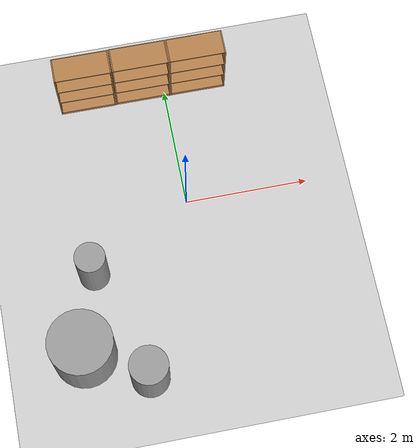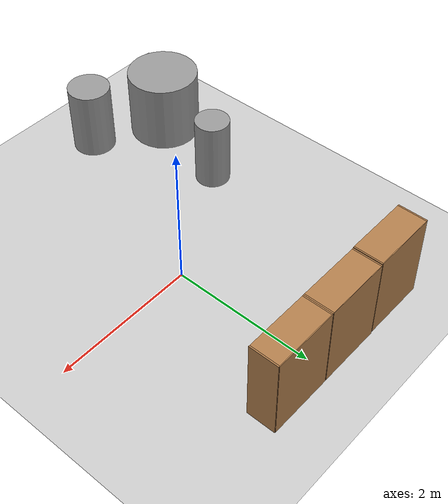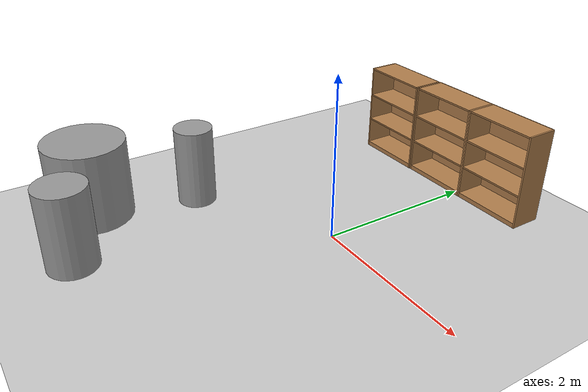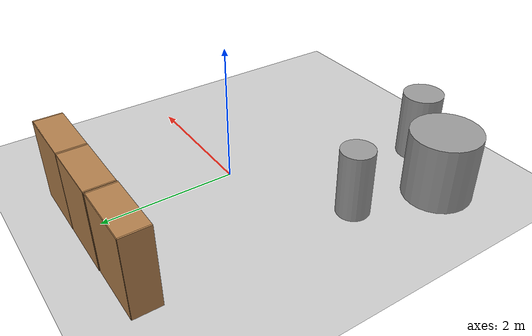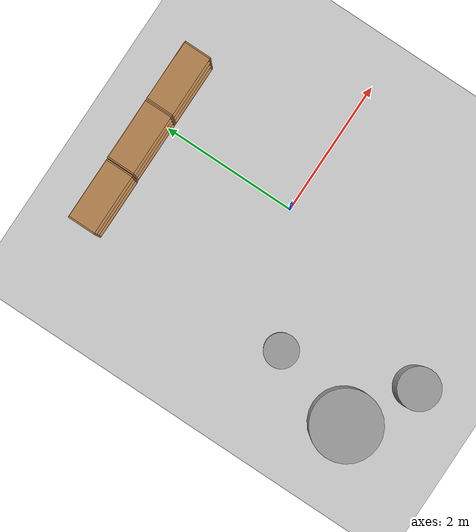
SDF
<sdf version="1.7">
 <world name="default">
  <light name="sun" type="directional">
   <pose>0 0 10 0 -0 0</pose>
   <diffuse>0.8 0.8 0.8 1</diffuse>
   <specular>0.2 0.2 0.2 1</specular>
   <attenuation>
    <range>1000</range>
    <constant>0.9</constant>
    <linear>0.01</linear>
    <quadratic>0.001</quadratic>
   </attenuation>
   <direction>-0.5 0.1 -0.9</direction>
   <spot><inner_angle>0</inner_angle><outer_angle>0</outer_angle><falloff>0</falloff></spot>
  </light>
  <model name="ground_plane">
   <static>1</static>
   <link name="link">
    <collision name="collision">
     <geometry><plane><normal>0 0 1</normal><size>100 100</size></plane></geometry>
     <surface><friction><ode><mu>100</mu><mu2>50</mu2></ode></friction></surface>
    </collision>
    <visual name="visual">
     <cast_shadows>0</cast_shadows>
     <geometry><plane><normal>0 0 1</normal><size>100 100</size></plane></geometry>
     <material>
      <script><uri>file://media/materials/scripts/gazebo.material</uri><name>Gazebo/Grey</name></script>
     </material>
    </visual>
   </link>
  </model>
  <gravity>0 0 -9.8</gravity>
  <magnetic_field>6e-06 2.3e-05 -4.2e-05</magnetic_field>
  <atmosphere type="adiabatic"/>
  <physics type="ode">
   <max_step_size>0.001</max_step_size>
   <real_time_factor>1</real_time_factor>
   <real_time_update_rate>1000</real_time_update_rate>
  </physics>
  <scene><ambient>0.4 0.4 0.4 1</ambient><background>0.7 0.7 0.7 1</background><shadows>1</shadows></scene>
  <spherical_coordinates>
   <surface_model>EARTH_WGS84</surface_model>
   <latitude_deg>0</latitude_deg>
   <longitude_deg>0</longitude_deg>
   <elevation>0</elevation>
   <heading_deg>0</heading_deg>
  </spherical_coordinates>
  <model name="bookshelf">
   <static>1</static>
   <link name="link">
    <inertial><mass>1</mass></inertial>
    <collision name="back">
     <pose>0 0.005 0.6 0 -0 0</pose>
     <geometry><box><size>0.9 0.01 1.2</size></box></geometry>
    </collision>
    <visual name="visual1">
     <pose>0 0.005 0.6 0 -0 0</pose>
     <geometry><box><size>0.9 0.01 1.2</size></box></geometry>
     <material>
      <script><uri>file://media/materials/scripts/gazebo.material</uri><name>Gazebo/Wood</name></script>
     </material>
    </visual>
    <collision name="left_side">
     <pose>0.45 -0.195 0.6 0 -0 0</pose>
     <geometry><box><size>0.02 0.4 1.2</size></box></geometry>
    </collision>
    <visual name="visual2">
     <pose>0.45 -0.195 0.6 0 -0 0</pose>
     <geometry><box><size>0.02 0.4 1.2</size></box></geometry>
     <material>
      <script><uri>file://media/materials/scripts/gazebo.material</uri><name>Gazebo/Wood</name></script>
     </material>
    </visual>
    <collision name="right_side">
     <pose>-0.45 -0.195 0.6 0 -0 0</pose>
     <geometry><box><size>0.02 0.4 1.2</size></box></geometry>
    </collision>
    <visual name="visual3">
     <pose>-0.45 -0.195 0.6 0 -0 0</pose>
     <geometry><box><size>0.02 0.4 1.2</size></box></geometry>
     <material>
      <script><uri>file://media/materials/scripts/gazebo.material</uri><name>Gazebo/Wood</name></script>
     </material>
    </visual>
    <collision name="bottom">
     <pose>0 -0.195 0.03 0 -0 0</pose>
     <geometry><box><size>0.88 0.4 0.06</size></box></geometry>
    </collision>
    <visual name="visual4">
     <pose>0 -0.195 0.03 0 -0 0</pose>
     <geometry><box><size>0.88 0.4 0.06</size></box></geometry>
     <material>
      <script><uri>file://media/materials/scripts/gazebo.material</uri><name>Gazebo/Wood</name></script>
     </material>
    </visual>
    <collision name="top">
     <pose>0 -0.195 1.19 0 -0 0</pose>
     <geometry><box><size>0.88 0.4 0.02</size></box></geometry>
    </collision>
    <visual name="visual5">
     <pose>0 -0.195 1.19 0 -0 0</pose>
     <geometry><box><size>0.88 0.4 0.02</size></box></geometry>
     <material>
      <script><uri>file://media/materials/scripts/gazebo.material</uri><name>Gazebo/Wood</name></script>
     </material>
    </visual>
    <collision name="low_shelf">
     <pose>0 -0.195 0.43 0 -0 0</pose>
     <geometry><box><size>0.88 0.4 0.02</size></box></geometry>
    </collision>
    <visual name="visual6">
     <pose>0 -0.195 0.43 0 -0 0</pose>
     <geometry><box><size>0.88 0.4 0.02</size></box></geometry>
     <material>
      <script><uri>file://media/materials/scripts/gazebo.material</uri><name>Gazebo/Wood</name></script>
     </material>
    </visual>
    <collision name="high_shelf">
     <pose>0 -0.195 0.8 0 -0 0</pose>
     <geometry><box><size>0.88 0.4 0.02</size></box></geometry>
    </collision>
    <visual name="visual7">
     <pose>0 -0.195 0.8 0 -0 0</pose>
     <geometry><box><size>0.88 0.4 0.02</size></box></geometry>
     <material>
      <script><uri>file://media/materials/scripts/gazebo.material</uri><name>Gazebo/Wood</name></script>
     </material>
    </visual>
   </link>
   <pose>0.560097 2.33632 0 0 -0 0</pose>
  </model>
  <model name="bookshelf_0">
   <static>1</static>
   <link name="link">
    <inertial><mass>1</mass></inertial>
    <collision name="back">
     <pose>0 0.005 0.6 0 -0 0</pose>
     <geometry><box><size>0.9 0.01 1.2</size></box></geometry>
    </collision>
    <visual name="visual1">
     <pose>0 0.005 0.6 0 -0 0</pose>
     <geometry><box><size>0.9 0.01 1.2</size></box></geometry>
     <material>
      <script><uri>file://media/materials/scripts/gazebo.material</uri><name>Gazebo/Wood</name></script>
     </material>
    </visual>
    <collision name="left_side">
     <pose>0.45 -0.195 0.6 0 -0 0</pose>
     <geometry><box><size>0.02 0.4 1.2</size></box></geometry>
    </collision>
    <visual name="visual2">
     <pose>0.45 -0.195 0.6 0 -0 0</pose>
     <geometry><box><size>0.02 0.4 1.2</size></box></geometry>
     <material>
      <script><uri>file://media/materials/scripts/gazebo.material</uri><name>Gazebo/Wood</name></script>
     </material>
    </visual>
    <collision name="right_side">
     <pose>-0.45 -0.195 0.6 0 -0 0</pose>
     <geometry><box><size>0.02 0.4 1.2</size></box></geometry>
    </collision>
    <visual name="visual3">
     <pose>-0.45 -0.195 0.6 0 -0 0</pose>
     <geometry><box><size>0.02 0.4 1.2</size></box></geometry>
     <material>
      <script><uri>file://media/materials/scripts/gazebo.material</uri><name>Gazebo/Wood</name></script>
     </material>
    </visual>
    <collision name="bottom">
     <pose>0 -0.195 0.03 0 -0 0</pose>
     <geometry><box><size>0.88 0.4 0.06</size></box></geometry>
    </collision>
    <visual name="visual4">
     <pose>0 -0.195 0.03 0 -0 0</pose>
     <geometry><box><size>0.88 0.4 0.06</size></box></geometry>
     <material>
      <script><uri>file://media/materials/scripts/gazebo.material</uri><name>Gazebo/Wood</name></script>
     </material>
    </visual>
    <collision name="top">
     <pose>0 -0.195 1.19 0 -0 0</pose>
     <geometry><box><size>0.88 0.4 0.02</size></box></geometry>
    </collision>
    <visual name="visual5">
     <pose>0 -0.195 1.19 0 -0 0</pose>
     <geometry><box><size>0.88 0.4 0.02</size></box></geometry>
     <material>
      <script><uri>file://media/materials/scripts/gazebo.material</uri><name>Gazebo/Wood</name></script>
     </material>
    </visual>
    <collision name="low_shelf">
     <pose>0 -0.195 0.43 0 -0 0</pose>
     <geometry><box><size>0.88 0.4 0.02</size></box></geometry>
    </collision>
    <visual name="visual6">
     <pose>0 -0.195 0.43 0 -0 0</pose>
     <geometry><box><size>0.88 0.4 0.02</size></box></geometry>
     <material>
      <script><uri>file://media/materials/scripts/gazebo.material</uri><name>Gazebo/Wood</name></script>
     </material>
    </visual>
    <collision name="high_shelf">
     <pose>0 -0.195 0.8 0 -0 0</pose>
     <geometry><box><size>0.88 0.4 0.02</size></box></geometry>
    </collision>
    <visual name="visual7">
     <pose>0 -0.195 0.8 0 -0 0</pose>
     <geometry><box><size>0.88 0.4 0.02</size></box></geometry>
     <material>
      <script><uri>file://media/materials/scripts/gazebo.material</uri><name>Gazebo/Wood</name></script>
     </material>
    </visual>
   </link>
   <pose>-0.358587 2.33511 0 0 -0 0</pose>
  </model>
  <model name="bookshelf_1">
   <static>1</static>
   <link name="link">
    <inertial><mass>1</mass></inertial>
    <collision name="back">
     <pose>0 0.005 0.6 0 -0 0</pose>
     <geometry><box><size>0.9 0.01 1.2</size></box></geometry>
    </collision>
    <visual name="visual1">
     <pose>0 0.005 0.6 0 -0 0</pose>
     <geometry><box><size>0.9 0.01 1.2</size></box></geometry>
     <material>
      <script><uri>file://media/materials/scripts/gazebo.material</uri><name>Gazebo/Wood</name></script>
     </material>
    </visual>
    <collision name="left_side">
     <pose>0.45 -0.195 0.6 0 -0 0</pose>
     <geometry><box><size>0.02 0.4 1.2</size></box></geometry>
    </collision>
    <visual name="visual2">
     <pose>0.45 -0.195 0.6 0 -0 0</pose>
     <geometry><box><size>0.02 0.4 1.2</size></box></geometry>
     <material>
      <script><uri>file://media/materials/scripts/gazebo.material</uri><name>Gazebo/Wood</name></script>
     </material>
    </visual>
    <collision name="right_side">
     <pose>-0.45 -0.195 0.6 0 -0 0</pose>
     <geometry><box><size>0.02 0.4 1.2</size></box></geometry>
    </collision>
    <visual name="visual3">
     <pose>-0.45 -0.195 0.6 0 -0 0</pose>
     <geometry><box><size>0.02 0.4 1.2</size></box></geometry>
     <material>
      <script><uri>file://media/materials/scripts/gazebo.material</uri><name>Gazebo/Wood</name></script>
     </material>
    </visual>
    <collision name="bottom">
     <pose>0 -0.195 0.03 0 -0 0</pose>
     <geometry><box><size>0.88 0.4 0.06</size></box></geometry>
    </collision>
    <visual name="visual4">
     <pose>0 -0.195 0.03 0 -0 0</pose>
     <geometry><box><size>0.88 0.4 0.06</size></box></geometry>
     <material>
      <script><uri>file://media/materials/scripts/gazebo.material</uri><name>Gazebo/Wood</name></script>
     </material>
    </visual>
    <collision name="top">
     <pose>0 -0.195 1.19 0 -0 0</pose>
     <geometry><box><size>0.88 0.4 0.02</size></box></geometry>
    </collision>
    <visual name="visual5">
     <pose>0 -0.195 1.19 0 -0 0</pose>
     <geometry><box><size>0.88 0.4 0.02</size></box></geometry>
     <material>
      <script><uri>file://media/materials/scripts/gazebo.material</uri><name>Gazebo/Wood</name></script>
     </material>
    </visual>
    <collision name="low_shelf">
     <pose>0 -0.195 0.43 0 -0 0</pose>
     <geometry><box><size>0.88 0.4 0.02</size></box></geometry>
    </collision>
    <visual name="visual6">
     <pose>0 -0.195 0.43 0 -0 0</pose>
     <geometry><box><size>0.88 0.4 0.02</size></box></geometry>
     <material>
      <script><uri>file://media/materials/scripts/gazebo.material</uri><name>Gazebo/Wood</name></script>
     </material>
    </visual>
    <collision name="high_shelf">
     <pose>0 -0.195 0.8 0 -0 0</pose>
     <geometry><box><size>0.88 0.4 0.02</size></box></geometry>
    </collision>
    <visual name="visual7">
     <pose>0 -0.195 0.8 0 -0 0</pose>
     <geometry><box><size>0.88 0.4 0.02</size></box></geometry>
     <material>
      <script><uri>file://media/materials/scripts/gazebo.material</uri><name>Gazebo/Wood</name></script>
     </material>
    </visual>
   </link>
   <pose>-1.28762 2.3277 0 0 -0 0</pose>
  </model>
  <model name="unit_cylinder">
   <pose>-1.07017 -2.73193 0.499998 -1e-06 -1e-06 0</pose>
   <link name="link">
    <inertial>
     <mass>1</mass>
     <inertia><ixx>0.145833</ixx><ixy>0</ixy><ixz>0</ixz><iyy>0.145833</iyy><iyz>0</iyz><izz>0.125</izz></inertia>
    </inertial>
    <collision name="collision">
     <geometry><cylinder><radius>0.299499</radius><length>1</length></cylinder></geometry>
    </collision>
    <visual name="visual">
     <geometry><cylinder><radius>0.299499</radius><length>1</length></cylinder></geometry>
     <material>
      <script><name>Gazebo/Grey</name><uri>file://media/materials/scripts/gazebo.material</uri></script>
     </material>
    </visual>
   </link>
  </model>
  <model name="unit_cylinder_0">
   <pose>-1.65685 -0.948566 0.499992 -1e-06 1e-06 2e-06</pose>
   <link name="link">
    <inertial>
     <mass>1</mass>
     <inertia><ixx>0.145833</ixx><ixy>0</ixy><ixz>0</ixz><iyy>0.145833</iyy><iyz>0</iyz><izz>0.125</izz></inertia>
    </inertial>
    <collision name="collision">
     <geometry><cylinder><radius>0.240848</radius><length>1</length></cylinder></geometry>
    </collision>
    <visual name="visual">
     <geometry><cylinder><radius>0.240848</radius><length>1</length></cylinder></geometry>
     <material>
      <script><name>Gazebo/Grey</name><uri>file://media/materials/scripts/gazebo.material</uri></script>
     </material>
    </visual>
   </link>
  </model>
  <model name="unit_cylinder_1">
   <pose>-2.00329 -2.20348 0.499997 3e-06 4e-06 -0</pose>
   <link name="link">
    <inertial>
     <mass>1</mass>
     <inertia><ixx>0.145833</ixx><ixy>0</ixy><ixz>0</ixz><iyy>0.145833</iyy><iyz>0</iyz><izz>0.125</izz></inertia>
    </inertial>
    <collision name="collision">
     <geometry><cylinder><radius>0.5</radius><length>1</length></cylinder></geometry>
    </collision>
    <visual name="visual">
     <geometry><cylinder><radius>0.5</radius><length>1</length></cylinder></geometry>
     <material>
      <script><name>Gazebo/Grey</name><uri>file://media/materials/scripts/gazebo.material</uri></script>
     </material>
    </visual>
   </link>
  </model>
 </world>
</sdf>
